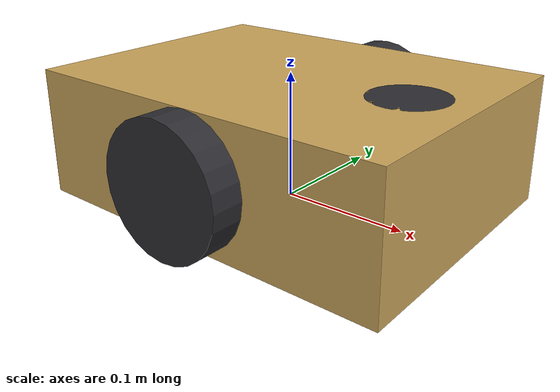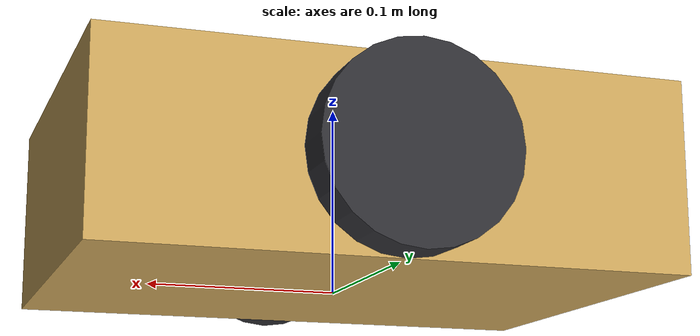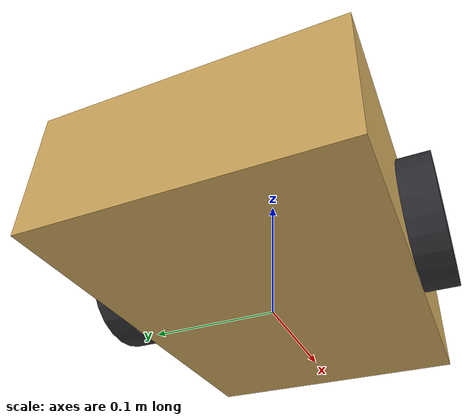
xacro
<?xml version="1.0"?>
<robot xmlns:xacro="http://www.ros.org/wiki/xacro" name="maze_bot">
  <xacro:property name="body_length" value="0.30"/>
  <xacro:property name="body_width" value="0.22"/>
  <xacro:property name="body_height" value="0.10"/>
  <xacro:property name="wheel_radius" value="0.05"/>
  <xacro:property name="wheel_width" value="0.03"/>
  <xacro:property name="wheel_y_offset" value="0.12"/>
  <xacro:property name="wheel_x_offset" value="0.0"/>
  <xacro:property name="caster_radius" value="0.02"/>
  <xacro:property name="laser_z" value="0.085"/>

  <material name="sand">
    <color rgba="0.80 0.65 0.36 1.0"/>
  </material>

  <material name="graphite">
    <color rgba="0.18 0.18 0.20 1.0"/>
  </material>

  <link name="base_footprint"/>

  <link name="base_link">
    <visual>
      <origin xyz="0 0 ${body_height / 2.0}" rpy="0 0 0"/>
      <geometry>
        <box size="${body_length} ${body_width} ${body_height}"/>
      </geometry>
      <material name="sand"/>
    </visual>
    <collision>
      <origin xyz="0 0 ${body_height / 2.0}" rpy="0 0 0"/>
      <geometry>
        <box size="${body_length} ${body_width} ${body_height}"/>
      </geometry>
    </collision>
    <inertial>
      <origin xyz="0 0 ${body_height / 2.0}" rpy="0 0 0"/>
      <mass value="4.0"/>
      <inertia ixx="0.032" ixy="0.0" ixz="0.0" iyy="0.045" iyz="0.0" izz="0.055"/>
    </inertial>
  </link>

  <joint name="base_footprint_joint" type="fixed">
    <parent link="base_footprint"/>
    <child link="base_link"/>
    <origin xyz="0 0 0" rpy="0 0 0"/>
  </joint>

  <link name="left_wheel_link">
    <visual>
      <origin xyz="0 0 0" rpy="1.5708 0 0"/>
      <geometry>
        <cylinder radius="${wheel_radius}" length="${wheel_width}"/>
      </geometry>
      <material name="graphite"/>
    </visual>
    <collision>
      <origin xyz="0 0 0" rpy="1.5708 0 0"/>
      <geometry>
        <cylinder radius="${wheel_radius}" length="${wheel_width}"/>
      </geometry>
    </collision>
    <inertial>
      <mass value="0.35"/>
      <inertia ixx="0.0005" ixy="0.0" ixz="0.0" iyy="0.0005" iyz="0.0" izz="0.0007"/>
    </inertial>
  </link>

  <joint name="left_wheel_joint" type="continuous">
    <parent link="base_link"/>
    <child link="left_wheel_link"/>
    <origin xyz="${wheel_x_offset} ${wheel_y_offset} ${wheel_radius}" rpy="0 0 0"/>
    <axis xyz="0 1 0"/>
  </joint>

  <link name="right_wheel_link">
    <visual>
      <origin xyz="0 0 0" rpy="1.5708 0 0"/>
      <geometry>
        <cylinder radius="${wheel_radius}" length="${wheel_width}"/>
      </geometry>
      <material name="graphite"/>
    </visual>
    <collision>
      <origin xyz="0 0 0" rpy="1.5708 0 0"/>
      <geometry>
        <cylinder radius="${wheel_radius}" length="${wheel_width}"/>
      </geometry>
    </collision>
    <inertial>
      <mass value="0.35"/>
      <inertia ixx="0.0005" ixy="0.0" ixz="0.0" iyy="0.0005" iyz="0.0" izz="0.0007"/>
    </inertial>
  </link>

  <joint name="right_wheel_joint" type="continuous">
    <parent link="base_link"/>
    <child link="right_wheel_link"/>
    <origin xyz="${wheel_x_offset} ${-wheel_y_offset} ${wheel_radius}" rpy="0 0 0"/>
    <axis xyz="0 1 0"/>
  </joint>

  <link name="caster_link">
    <visual>
      <origin xyz="0 0 0" rpy="0 0 0"/>
      <geometry>
        <sphere radius="${caster_radius}"/>
      </geometry>
      <material name="graphite"/>
    </visual>
    <collision>
      <origin xyz="0 0 0" rpy="0 0 0"/>
      <geometry>
        <sphere radius="${caster_radius}"/>
      </geometry>
    </collision>
    <inertial>
      <mass value="0.1"/>
      <inertia ixx="0.0001" ixy="0.0" ixz="0.0" iyy="0.0001" iyz="0.0" izz="0.0001"/>
    </inertial>
  </link>

  <joint name="caster_joint" type="fixed">
    <parent link="base_link"/>
    <child link="caster_link"/>
    <origin xyz="-0.10 0 ${caster_radius}" rpy="0 0 0"/>
  </joint>

  <link name="laser_link">
    <visual>
      <origin xyz="0 0 0" rpy="0 0 0"/>
      <geometry>
        <cylinder radius="0.03" length="0.03"/>
      </geometry>
      <material name="graphite"/>
    </visual>
    <collision>
      <origin xyz="0 0 0" rpy="0 0 0"/>
      <geometry>
        <cylinder radius="0.03" length="0.03"/>
      </geometry>
    </collision>
    <inertial>
      <mass value="0.05"/>
      <inertia ixx="0.0001" ixy="0.0" ixz="0.0" iyy="0.0001" iyz="0.0" izz="0.0001"/>
    </inertial>
  </link>

  <joint name="laser_joint" type="fixed">
    <parent link="base_link"/>
    <child link="laser_link"/>
    <origin xyz="0.10 0 ${laser_z}" rpy="0 0 0"/>
  </joint>

  <gazebo reference="base_link">
    <material>Gazebo/Orange</material>
  </gazebo>

  <gazebo reference="left_wheel_link">
    <material>Gazebo/Black</material>
    <mu1>1.0</mu1>
    <mu2>1.0</mu2>
  </gazebo>

  <gazebo reference="right_wheel_link">
    <material>Gazebo/Black</material>
    <mu1>1.0</mu1>
    <mu2>1.0</mu2>
  </gazebo>

  <gazebo reference="caster_link">
    <material>Gazebo/Black</material>
    <mu1>0.2</mu1>
    <mu2>0.2</mu2>
  </gazebo>

  <gazebo reference="laser_link">
    <sensor type="ray" name="lidar_sensor">
      <pose>0 0 0 0 0 0</pose>
      <visualize>true</visualize>
      <update_rate>12</update_rate>
      <ray>
        <scan>
          <horizontal>
            <samples>720</samples>
            <resolution>1</resolution>
            <min_angle>-3.14159</min_angle>
            <max_angle>3.14159</max_angle>
          </horizontal>
        </scan>
        <range>
          <min>0.12</min>
          <max>8.0</max>
          <resolution>0.01</resolution>
        </range>
      </ray>
      <plugin name="gazebo_ros_ray_sensor" filename="libgazebo_ros_ray_sensor.so">
        <ros>
          <remapping>~/out:=scan</remapping>
        </ros>
        <output_type>sensor_msgs/LaserScan</output_type>
        <frame_name>laser_link</frame_name>
      </plugin>
    </sensor>
  </gazebo>

  <gazebo>
    <plugin name="gazebo_ros_diff_drive" filename="libgazebo_ros_diff_drive.so">
      <ros>
        <namespace>/</namespace>
      </ros>
      <update_rate>50</update_rate>
      <left_joint>left_wheel_joint</left_joint>
      <right_joint>right_wheel_joint</right_joint>
      <wheel_separation>${2.0 * wheel_y_offset}</wheel_separation>
      <wheel_diameter>${2.0 * wheel_radius}</wheel_diameter>
      <max_wheel_torque>20.0</max_wheel_torque>
      <max_wheel_acceleration>8.0</max_wheel_acceleration>
      <command_topic>cmd_vel</command_topic>
      <odometry_topic>odom</odometry_topic>
      <odometry_frame>odom</odometry_frame>
      <robot_base_frame>base_footprint</robot_base_frame>
      <publish_odom>true</publish_odom>
      <publish_odom_tf>true</publish_odom_tf>
      <publish_wheel_tf>false</publish_wheel_tf>
    </plugin>
  </gazebo>
</robot>
